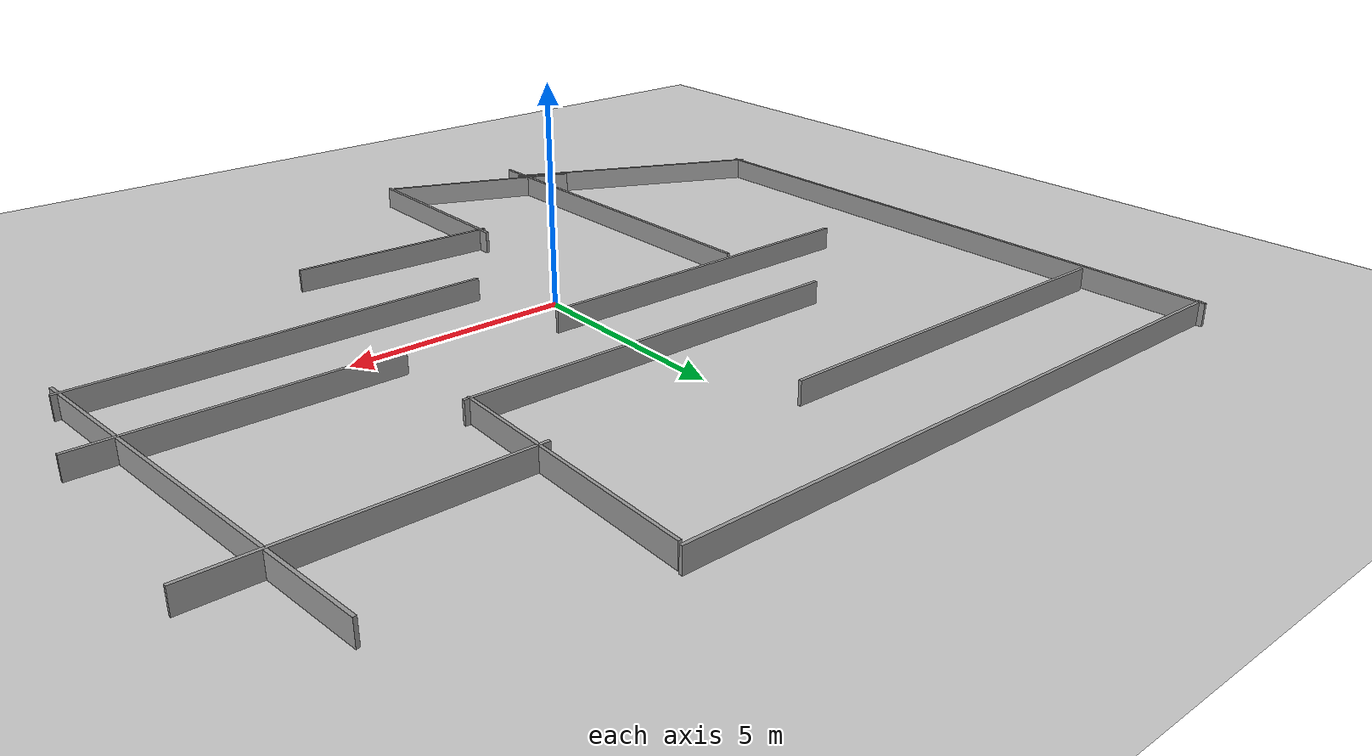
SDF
<sdf version="1.6">
 <world name="default">
  <light name="sun" type="directional">
   <pose>0 0 10 0 -0 0</pose>
   <diffuse>0.8 0.8 0.8 1</diffuse>
   <specular>0.2 0.2 0.2 1</specular>
   <attenuation>
    <range>1000</range>
    <constant>0.9</constant>
    <linear>0.01</linear>
    <quadratic>0.001</quadratic>
   </attenuation>
   <direction>-0.5 0.1 -0.9</direction>
  </light>
  <model name="ground_plane">
   <static>1</static>
   <link name="link">
    <collision name="collision">
     <geometry><plane><normal>0 0 1</normal><size>100 100</size></plane></geometry>
     <surface><friction><ode><mu>100</mu><mu2>50</mu2></ode></friction></surface>
    </collision>
    <visual name="visual">
     <cast_shadows>0</cast_shadows>
     <geometry><plane><normal>0 0 1</normal><size>100 100</size></plane></geometry>
     <material>
      <script><uri>file://media/materials/scripts/gazebo.material</uri><name>Gazebo/Grey</name></script>
     </material>
    </visual>
   </link>
  </model>
  <gravity>0 0 -9.8</gravity>
  <magnetic_field>6e-06 2.3e-05 -4.2e-05</magnetic_field>
  <atmosphere type="adiabatic"/>
  <physics name="default_physics" default="0" type="ode">
   <max_step_size>0.001</max_step_size>
   <real_time_factor>1</real_time_factor>
   <real_time_update_rate>1000</real_time_update_rate>
  </physics>
  <scene><ambient>0.4 0.4 0.4 1</ambient><background>0.7 0.7 0.7 1</background><shadows>1</shadows></scene>
  <audio><device>default</device></audio>
  <spherical_coordinates>
   <surface_model>EARTH_WGS84</surface_model>
   <latitude_deg>0</latitude_deg>
   <longitude_deg>0</longitude_deg>
   <elevation>0</elevation>
   <heading_deg>0</heading_deg>
  </spherical_coordinates>
  <model name="Untitled">
   <model name="please">
    <link name="link_1">
     <inertial>
      <mass>1.06392</mass>
      <inertia>
       <ixx>0.0891309</ixx>
       <ixy>0</ixy>
       <ixz>0</ixz>
       <iyy>18.9691</iyy>
       <iyz>0</iyz>
       <izz>18.8809</izz>
      </inertia>
     </inertial>
     <pose>-2.76768 8.91601 0 0 -0 0</pose>
     <visual name="visual">
      <geometry><box><size>14.5929 0.072898 1</size></box></geometry>
      <material>
       <lighting>1</lighting>
       <script><uri>file://media/materials/scripts/gazebo.material</uri><name>Gazebo/Grey</name></script>
      </material>
     </visual>
     <collision name="collision">
      <geometry><box><size>14.5929 0.072898 1</size></box></geometry>
      <surface>
       <friction>
        <ode><mu>1</mu><mu2>1</mu2><fdir1>0 0 0</fdir1><slip1>0</slip1><slip2>0</slip2></ode>
        <torsional>
         <coefficient>1</coefficient>
         <patch_radius>0</patch_radius>
         <surface_radius>0</surface_radius>
         <use_patch_radius>1</use_patch_radius>
         <ode><slip>0</slip></ode>
        </torsional>
       </friction>
       <bounce><restitution_coefficient>0</restitution_coefficient><threshold>1e+06</threshold></bounce>
       <contact>
        <collide_without_contact>0</collide_without_contact>
        <collide_without_contact_bitmask>1</collide_without_contact_bitmask>
        <collide_bitmask>1</collide_bitmask>
        <ode>
         <soft_cfm>0</soft_cfm>
         <soft_erp>0.2</soft_erp>
         <kp>1e+13</kp>
         <kd>1</kd>
         <max_vel>0.01</max_vel>
         <min_depth>0</min_depth>
        </ode>
        <bullet>
         <split_impulse>1</split_impulse>
         <split_impulse_penetration_threshold>-0.01</split_impulse_penetration_threshold>
         <soft_cfm>0</soft_cfm>
         <soft_erp>0.2</soft_erp>
         <kp>1e+13</kp>
         <kd>1</kd>
        </bullet>
       </contact>
      </surface>
     </collision>
    </link>
    <link name="link_1_clone">
     <inertial>
      <mass>0.441837</mass>
      <inertia>
       <ixx>0.0370154</ixx>
       <ixy>0</ixy>
       <ixz>0</ixz>
       <iyy>1.38911</iyy>
       <iyz>0</iyz>
       <izz>1.35249</izz>
      </inertia>
     </inertial>
     <pose>4.41001 5.78705 0 0 -0 1.55486</pose>
     <visual name="visual">
      <geometry><box><size>6.06031 0.072898 1</size></box></geometry>
      <material>
       <lighting>1</lighting>
       <script><uri>file://media/materials/scripts/gazebo.material</uri><name>Gazebo/Grey</name></script>
       <shader type="pixel"/>
      </material>
     </visual>
     <collision name="collision">
      <geometry><box><size>6.06031 0.072898 1</size></box></geometry>
      <surface>
       <friction>
        <ode><mu>1</mu><mu2>1</mu2><fdir1>0 0 0</fdir1><slip1>0</slip1><slip2>0</slip2></ode>
        <torsional>
         <coefficient>1</coefficient>
         <patch_radius>0</patch_radius>
         <surface_radius>0</surface_radius>
         <use_patch_radius>1</use_patch_radius>
         <ode><slip>0</slip></ode>
        </torsional>
       </friction>
       <bounce><restitution_coefficient>0</restitution_coefficient><threshold>1e+06</threshold></bounce>
       <contact>
        <collide_without_contact>0</collide_without_contact>
        <collide_without_contact_bitmask>1</collide_without_contact_bitmask>
        <collide_bitmask>1</collide_bitmask>
        <ode>
         <soft_cfm>0</soft_cfm>
         <soft_erp>0.2</soft_erp>
         <kp>1e+13</kp>
         <kd>1</kd>
         <max_vel>0.01</max_vel>
         <min_depth>0</min_depth>
        </ode>
        <bullet>
         <split_impulse>1</split_impulse>
         <split_impulse_penetration_threshold>-0.01</split_impulse_penetration_threshold>
         <soft_cfm>0</soft_cfm>
         <soft_erp>0.2</soft_erp>
         <kp>1e+13</kp>
         <kd>1</kd>
        </bullet>
       </contact>
      </surface>
     </collision>
    </link>
    <link name="link_1_clone_0">
     <inertial>
      <mass>1.06392</mass>
      <inertia>
       <ixx>0.0891309</ixx>
       <ixy>0</ixy>
       <ixz>0</ixz>
       <iyy>18.9691</iyy>
       <iyz>0</iyz>
       <izz>18.8809</izz>
      </inertia>
     </inertial>
     <pose>-9.9198 1.77744 0 0 -0 1.5834</pose>
     <visual name="visual">
      <geometry><box><size>14.5929 0.072898 1</size></box></geometry>
      <material>
       <lighting>1</lighting>
       <script><uri>file://media/materials/scripts/gazebo.material</uri><name>Gazebo/Grey</name></script>
       <shader type="pixel"/>
      </material>
     </visual>
     <collision name="collision">
      <geometry><box><size>14.5929 0.072898 1</size></box></geometry>
      <surface>
       <friction>
        <ode><mu>1</mu><mu2>1</mu2><fdir1>0 0 0</fdir1><slip1>0</slip1><slip2>0</slip2></ode>
        <torsional>
         <coefficient>1</coefficient>
         <patch_radius>0</patch_radius>
         <surface_radius>0</surface_radius>
         <use_patch_radius>1</use_patch_radius>
         <ode><slip>0</slip></ode>
        </torsional>
       </friction>
       <bounce><restitution_coefficient>0</restitution_coefficient><threshold>1e+06</threshold></bounce>
       <contact>
        <collide_without_contact>0</collide_without_contact>
        <collide_without_contact_bitmask>1</collide_without_contact_bitmask>
        <collide_bitmask>1</collide_bitmask>
        <ode>
         <soft_cfm>0</soft_cfm>
         <soft_erp>0.2</soft_erp>
         <kp>1e+13</kp>
         <kd>1</kd>
         <max_vel>0.01</max_vel>
         <min_depth>0</min_depth>
        </ode>
        <bullet>
         <split_impulse>1</split_impulse>
         <split_impulse_penetration_threshold>-0.01</split_impulse_penetration_threshold>
         <soft_cfm>0</soft_cfm>
         <soft_erp>0.2</soft_erp>
         <kp>1e+13</kp>
         <kd>1</kd>
        </bullet>
       </contact>
      </surface>
     </collision>
    </link>
    <link name="link_1_clone_1">
     <inertial>
      <mass>0.663062</mass>
      <inertia>
       <ixx>0.0555488</ixx>
       <ixy>0</ixy>
       <ixz>0</ixz>
       <iyy>4.62557</iyy>
       <iyz>0</iyz>
       <izz>4.57061</izz>
      </inertia>
     </inertial>
     <pose>-5.27642 6.15551 0 0 -0 0</pose>
     <visual name="visual">
      <geometry><box><size>9.09467 0.072898 1</size></box></geometry>
      <material>
       <lighting>1</lighting>
       <script><uri>file://media/materials/scripts/gazebo.material</uri><name>Gazebo/Grey</name></script>
       <shader type="pixel"/>
      </material>
     </visual>
     <collision name="collision">
      <geometry><box><size>9.09467 0.072898 1</size></box></geometry>
      <surface>
       <friction>
        <ode><mu>1</mu><mu2>1</mu2><fdir1>0 0 0</fdir1><slip1>0</slip1><slip2>0</slip2></ode>
        <torsional>
         <coefficient>1</coefficient>
         <patch_radius>0</patch_radius>
         <surface_radius>0</surface_radius>
         <use_patch_radius>1</use_patch_radius>
         <ode><slip>0</slip></ode>
        </torsional>
       </friction>
       <bounce><restitution_coefficient>0</restitution_coefficient><threshold>1e+06</threshold></bounce>
       <contact>
        <collide_without_contact>0</collide_without_contact>
        <collide_without_contact_bitmask>1</collide_without_contact_bitmask>
        <collide_bitmask>1</collide_bitmask>
        <ode>
         <soft_cfm>0</soft_cfm>
         <soft_erp>0.2</soft_erp>
         <kp>1e+13</kp>
         <kd>1</kd>
         <max_vel>0.01</max_vel>
         <min_depth>0</min_depth>
        </ode>
        <bullet>
         <split_impulse>1</split_impulse>
         <split_impulse_penetration_threshold>-0.01</split_impulse_penetration_threshold>
         <soft_cfm>0</soft_cfm>
         <soft_erp>0.2</soft_erp>
         <kp>1e+13</kp>
         <kd>1</kd>
        </bullet>
       </contact>
      </surface>
     </collision>
    </link>
    <link name="link_1_clone_1_clone">
     <inertial>
      <mass>0.663062</mass>
      <inertia>
       <ixx>0.0555488</ixx>
       <ixy>0</ixy>
       <ixz>0</ixz>
       <iyy>4.62557</iyy>
       <iyz>0</iyz>
       <izz>4.57061</izz>
      </inertia>
     </inertial>
     <pose>-0.036451 2.821 0 0 -0 0</pose>
     <visual name="visual">
      <geometry><box><size>9.09467 0.072898 1</size></box></geometry>
      <material>
       <lighting>1</lighting>
       <script><uri>file://media/materials/scripts/gazebo.material</uri><name>Gazebo/Grey</name></script>
       <shader type="pixel"/>
      </material>
     </visual>
     <collision name="collision">
      <geometry><box><size>9.09467 0.072898 1</size></box></geometry>
      <surface>
       <friction>
        <ode><mu>1</mu><mu2>1</mu2><fdir1>0 0 0</fdir1><slip1>0</slip1><slip2>0</slip2></ode>
        <torsional>
         <coefficient>1</coefficient>
         <patch_radius>0</patch_radius>
         <surface_radius>0</surface_radius>
         <use_patch_radius>1</use_patch_radius>
         <ode><slip>0</slip></ode>
        </torsional>
       </friction>
       <bounce><restitution_coefficient>0</restitution_coefficient><threshold>1e+06</threshold></bounce>
       <contact>
        <collide_without_contact>0</collide_without_contact>
        <collide_without_contact_bitmask>1</collide_without_contact_bitmask>
        <collide_bitmask>1</collide_bitmask>
        <ode>
         <soft_cfm>0</soft_cfm>
         <soft_erp>0.2</soft_erp>
         <kp>1e+13</kp>
         <kd>1</kd>
         <max_vel>0.01</max_vel>
         <min_depth>0</min_depth>
        </ode>
        <bullet>
         <split_impulse>1</split_impulse>
         <split_impulse_penetration_threshold>-0.01</split_impulse_penetration_threshold>
         <soft_cfm>0</soft_cfm>
         <soft_erp>0.2</soft_erp>
         <kp>1e+13</kp>
         <kd>1</kd>
        </bullet>
       </contact>
      </surface>
     </collision>
    </link>
    <link name="link_1_clone_1_clone_0">
     <inertial>
      <mass>0.663062</mass>
      <inertia>
       <ixx>0.0555488</ixx>
       <ixy>0</ixy>
       <ixz>0</ixz>
       <iyy>4.62557</iyy>
       <iyz>0</iyz>
       <izz>4.57061</izz>
      </inertia>
     </inertial>
     <pose>-4.19973 -4.28392 0 0 -0 1.58806</pose>
     <visual name="visual">
      <geometry><box><size>9.09467 0.072898 1</size></box></geometry>
      <material>
       <lighting>1</lighting>
       <script><uri>file://media/materials/scripts/gazebo.material</uri><name>Gazebo/Grey</name></script>
       <shader type="pixel"/>
      </material>
     </visual>
     <collision name="collision">
      <geometry><box><size>9.09467 0.072898 1</size></box></geometry>
      <surface>
       <friction>
        <ode><mu>1</mu><mu2>1</mu2><fdir1>0 0 0</fdir1><slip1>0</slip1><slip2>0</slip2></ode>
        <torsional>
         <coefficient>1</coefficient>
         <patch_radius>0</patch_radius>
         <surface_radius>0</surface_radius>
         <use_patch_radius>1</use_patch_radius>
         <ode><slip>0</slip></ode>
        </torsional>
       </friction>
       <bounce><restitution_coefficient>0</restitution_coefficient><threshold>1e+06</threshold></bounce>
       <contact>
        <collide_without_contact>0</collide_without_contact>
        <collide_without_contact_bitmask>1</collide_without_contact_bitmask>
        <collide_bitmask>1</collide_bitmask>
        <ode>
         <soft_cfm>0</soft_cfm>
         <soft_erp>0.2</soft_erp>
         <kp>1e+13</kp>
         <kd>1</kd>
         <max_vel>0.01</max_vel>
         <min_depth>0</min_depth>
        </ode>
        <bullet>
         <split_impulse>1</split_impulse>
         <split_impulse_penetration_threshold>-0.01</split_impulse_penetration_threshold>
         <soft_cfm>0</soft_cfm>
         <soft_erp>0.2</soft_erp>
         <kp>1e+13</kp>
         <kd>1</kd>
        </bullet>
       </contact>
      </surface>
     </collision>
    </link>
    <link name="link_1_clone_1_clone_0_clone">
     <inertial>
      <mass>0.348733</mass>
      <inertia>
       <ixx>0.0292155</ixx>
       <ixy>0</ixy>
       <ixz>0</ixz>
       <iyy>0.69397</iyy>
       <iyz>0</iyz>
       <izz>0.665063</izz>
      </inertia>
     </inertial>
     <pose>-0.681439 -7.03277 0 0 -0 1.58806</pose>
     <visual name="visual">
      <geometry><box><size>4.78327 0.072898 1</size></box></geometry>
      <material>
       <lighting>1</lighting>
       <script><uri>file://media/materials/scripts/gazebo.material</uri><name>Gazebo/Grey</name></script>
       <shader type="pixel"/>
      </material>
     </visual>
     <collision name="collision">
      <geometry><box><size>4.78327 0.072898 1</size></box></geometry>
      <surface>
       <friction>
        <ode><mu>1</mu><mu2>1</mu2><fdir1>0 0 0</fdir1><slip1>0</slip1><slip2>0</slip2></ode>
        <torsional>
         <coefficient>1</coefficient>
         <patch_radius>0</patch_radius>
         <surface_radius>0</surface_radius>
         <use_patch_radius>1</use_patch_radius>
         <ode><slip>0</slip></ode>
        </torsional>
       </friction>
       <bounce><restitution_coefficient>0</restitution_coefficient><threshold>1e+06</threshold></bounce>
       <contact>
        <collide_without_contact>0</collide_without_contact>
        <collide_without_contact_bitmask>1</collide_without_contact_bitmask>
        <collide_bitmask>1</collide_bitmask>
        <ode>
         <soft_cfm>0</soft_cfm>
         <soft_erp>0.2</soft_erp>
         <kp>1e+13</kp>
         <kd>1</kd>
         <max_vel>0.01</max_vel>
         <min_depth>0</min_depth>
        </ode>
        <bullet>
         <split_impulse>1</split_impulse>
         <split_impulse_penetration_threshold>-0.01</split_impulse_penetration_threshold>
         <soft_cfm>0</soft_cfm>
         <soft_erp>0.2</soft_erp>
         <kp>1e+13</kp>
         <kd>1</kd>
        </bullet>
       </contact>
      </surface>
     </collision>
    </link>
    <link name="link_1_clone_1_clone_0_clone_clone">
     <inertial>
      <mass>0.348733</mass>
      <inertia>
       <ixx>0.0292155</ixx>
       <ixy>0</ixy>
       <ixz>0</ixz>
       <iyy>0.69397</iyy>
       <iyz>0</iyz>
       <izz>0.665063</izz>
      </inertia>
     </inertial>
     <pose>-2.93379 -8.39048 0 0 -0 2.74961</pose>
     <visual name="visual">
      <geometry><box><size>4.78327 0.072898 1</size></box></geometry>
      <material>
       <lighting>1</lighting>
       <script><uri>file://media/materials/scripts/gazebo.material</uri><name>Gazebo/Grey</name></script>
       <shader type="pixel"/>
      </material>
     </visual>
     <collision name="collision">
      <geometry><box><size>4.78327 0.072898 1</size></box></geometry>
      <surface>
       <friction>
        <ode><mu>1</mu><mu2>1</mu2><fdir1>0 0 0</fdir1><slip1>0</slip1><slip2>0</slip2></ode>
        <torsional>
         <coefficient>1</coefficient>
         <patch_radius>0</patch_radius>
         <surface_radius>0</surface_radius>
         <use_patch_radius>1</use_patch_radius>
         <ode><slip>0</slip></ode>
        </torsional>
       </friction>
       <bounce><restitution_coefficient>0</restitution_coefficient><threshold>1e+06</threshold></bounce>
       <contact>
        <collide_without_contact>0</collide_without_contact>
        <collide_without_contact_bitmask>1</collide_without_contact_bitmask>
        <collide_bitmask>1</collide_bitmask>
        <ode>
         <soft_cfm>0</soft_cfm>
         <soft_erp>0.2</soft_erp>
         <kp>1e+13</kp>
         <kd>1</kd>
         <max_vel>0.01</max_vel>
         <min_depth>0</min_depth>
        </ode>
        <bullet>
         <split_impulse>1</split_impulse>
         <split_impulse_penetration_threshold>-0.01</split_impulse_penetration_threshold>
         <soft_cfm>0</soft_cfm>
         <soft_erp>0.2</soft_erp>
         <kp>1e+13</kp>
         <kd>1</kd>
        </bullet>
       </contact>
      </surface>
     </collision>
    </link>
    <link name="link_1_clone_1_clone_0_clone_clone_0">
     <inertial>
      <mass>0.348733</mass>
      <inertia>
       <ixx>0.0292155</ixx>
       <ixy>0</ixy>
       <ixz>0</ixz>
       <iyy>0.69397</iyy>
       <iyz>0</iyz>
       <izz>0.665063</izz>
      </inertia>
     </inertial>
     <pose>1.56023 -5.0633 0 0 -0 3.09547</pose>
     <visual name="visual">
      <geometry><box><size>4.78327 0.072898 1</size></box></geometry>
      <material>
       <lighting>1</lighting>
       <script><uri>file://media/materials/scripts/gazebo.material</uri><name>Gazebo/Grey</name></script>
       <shader type="pixel"/>
      </material>
     </visual>
     <collision name="collision">
      <geometry><box><size>4.78327 0.072898 1</size></box></geometry>
      <surface>
       <friction>
        <ode><mu>1</mu><mu2>1</mu2><fdir1>0 0 0</fdir1><slip1>0</slip1><slip2>0</slip2></ode>
        <torsional>
         <coefficient>1</coefficient>
         <patch_radius>0</patch_radius>
         <surface_radius>0</surface_radius>
         <use_patch_radius>1</use_patch_radius>
         <ode><slip>0</slip></ode>
        </torsional>
       </friction>
       <bounce><restitution_coefficient>0</restitution_coefficient><threshold>1e+06</threshold></bounce>
       <contact>
        <collide_without_contact>0</collide_without_contact>
        <collide_without_contact_bitmask>1</collide_without_contact_bitmask>
        <collide_bitmask>1</collide_bitmask>
        <ode>
         <soft_cfm>0</soft_cfm>
         <soft_erp>0.2</soft_erp>
         <kp>1e+13</kp>
         <kd>1</kd>
         <max_vel>0.01</max_vel>
         <min_depth>0</min_depth>
        </ode>
        <bullet>
         <split_impulse>1</split_impulse>
         <split_impulse_penetration_threshold>-0.01</split_impulse_penetration_threshold>
         <soft_cfm>0</soft_cfm>
         <soft_erp>0.2</soft_erp>
         <kp>1e+13</kp>
         <kd>1</kd>
        </bullet>
       </contact>
      </surface>
     </collision>
    </link>
    <link name="link_1_clone_1_clone_1">
     <inertial>
      <mass>0.595504</mass>
      <inertia>
       <ixx>0.0498891</ixx>
       <ixy>0</ixy>
       <ixz>0</ixz>
       <iyy>3.36047</iyy>
       <iyz>0</iyz>
       <izz>3.31111</izz>
      </inertia>
     </inertial>
     <pose>-3.28915 0.471547 0 0 -0 0</pose>
     <visual name="visual">
      <geometry><box><size>8.16804 0.072898 1</size></box></geometry>
      <material>
       <lighting>1</lighting>
       <script><uri>file://media/materials/scripts/gazebo.material</uri><name>Gazebo/Grey</name></script>
       <shader type="pixel"/>
      </material>
     </visual>
     <collision name="collision">
      <geometry><box><size>8.16804 0.072898 1</size></box></geometry>
      <surface>
       <friction>
        <ode><mu>1</mu><mu2>1</mu2><fdir1>0 0 0</fdir1><slip1>0</slip1><slip2>0</slip2></ode>
        <torsional>
         <coefficient>1</coefficient>
         <patch_radius>0</patch_radius>
         <surface_radius>0</surface_radius>
         <use_patch_radius>1</use_patch_radius>
         <ode><slip>0</slip></ode>
        </torsional>
       </friction>
       <bounce><restitution_coefficient>0</restitution_coefficient><threshold>1e+06</threshold></bounce>
       <contact>
        <collide_without_contact>0</collide_without_contact>
        <collide_without_contact_bitmask>1</collide_without_contact_bitmask>
        <collide_bitmask>1</collide_bitmask>
        <ode>
         <soft_cfm>0</soft_cfm>
         <soft_erp>0.2</soft_erp>
         <kp>1e+13</kp>
         <kd>1</kd>
         <max_vel>0.01</max_vel>
         <min_depth>0</min_depth>
        </ode>
        <bullet>
         <split_impulse>1</split_impulse>
         <split_impulse_penetration_threshold>-0.01</split_impulse_penetration_threshold>
         <soft_cfm>0</soft_cfm>
         <soft_erp>0.2</soft_erp>
         <kp>1e+13</kp>
         <kd>1</kd>
        </bullet>
       </contact>
      </surface>
     </collision>
    </link>
    <link name="link_1_clone_1_clone_2">
     <inertial>
      <mass>0.481396</mass>
      <inertia>
       <ixx>0.0403295</ixx>
       <ixy>0</ixy>
       <ixz>0</ixz>
       <iyy>1.78913</iyy>
       <iyz>0</iyz>
       <izz>1.74922</izz>
      </inertia>
     </inertial>
     <pose>-6.9623 -6.74968 0 0 0 -0.441346</pose>
     <visual name="visual">
      <geometry><box><size>6.60291 0.072898 1</size></box></geometry>
      <material>
       <lighting>1</lighting>
       <script><uri>file://media/materials/scripts/gazebo.material</uri><name>Gazebo/Grey</name></script>
       <shader type="pixel"/>
      </material>
     </visual>
     <collision name="collision">
      <geometry><box><size>6.60291 0.072898 1</size></box></geometry>
      <surface>
       <friction>
        <ode><mu>1</mu><mu2>1</mu2><fdir1>0 0 0</fdir1><slip1>0</slip1><slip2>0</slip2></ode>
        <torsional>
         <coefficient>1</coefficient>
         <patch_radius>0</patch_radius>
         <surface_radius>0</surface_radius>
         <use_patch_radius>1</use_patch_radius>
         <ode><slip>0</slip></ode>
        </torsional>
       </friction>
       <bounce><restitution_coefficient>0</restitution_coefficient><threshold>1e+06</threshold></bounce>
       <contact>
        <collide_without_contact>0</collide_without_contact>
        <collide_without_contact_bitmask>1</collide_without_contact_bitmask>
        <collide_bitmask>1</collide_bitmask>
        <ode>
         <soft_cfm>0</soft_cfm>
         <soft_erp>0.2</soft_erp>
         <kp>1e+13</kp>
         <kd>1</kd>
         <max_vel>0.01</max_vel>
         <min_depth>0</min_depth>
        </ode>
        <bullet>
         <split_impulse>1</split_impulse>
         <split_impulse_penetration_threshold>-0.01</split_impulse_penetration_threshold>
         <soft_cfm>0</soft_cfm>
         <soft_erp>0.2</soft_erp>
         <kp>1e+13</kp>
         <kd>1</kd>
        </bullet>
       </contact>
      </surface>
     </collision>
    </link>
    <link name="link_1_clone_1_clone_3">
     <inertial>
      <mass>0.663062</mass>
      <inertia>
       <ixx>0.0555488</ixx>
       <ixy>0</ixy>
       <ixz>0</ixz>
       <iyy>4.62557</iyy>
       <iyz>0</iyz>
       <izz>4.57061</izz>
      </inertia>
     </inertial>
     <pose>5.64126 -2.16208 0 0 -0 0</pose>
     <visual name="visual">
      <geometry><box><size>9.09467 0.072898 1</size></box></geometry>
      <material>
       <lighting>1</lighting>
       <script><uri>file://media/materials/scripts/gazebo.material</uri><name>Gazebo/Grey</name></script>
       <shader type="pixel"/>
      </material>
     </visual>
     <collision name="collision">
      <geometry><box><size>9.09467 0.072898 1</size></box></geometry>
      <surface>
       <friction>
        <ode><mu>1</mu><mu2>1</mu2><fdir1>0 0 0</fdir1><slip1>0</slip1><slip2>0</slip2></ode>
        <torsional>
         <coefficient>1</coefficient>
         <patch_radius>0</patch_radius>
         <surface_radius>0</surface_radius>
         <use_patch_radius>1</use_patch_radius>
         <ode><slip>0</slip></ode>
        </torsional>
       </friction>
       <bounce><restitution_coefficient>0</restitution_coefficient><threshold>1e+06</threshold></bounce>
       <contact>
        <collide_without_contact>0</collide_without_contact>
        <collide_without_contact_bitmask>1</collide_without_contact_bitmask>
        <collide_bitmask>1</collide_bitmask>
        <ode>
         <soft_cfm>0</soft_cfm>
         <soft_erp>0.2</soft_erp>
         <kp>1e+13</kp>
         <kd>1</kd>
         <max_vel>0.01</max_vel>
         <min_depth>0</min_depth>
        </ode>
        <bullet>
         <split_impulse>1</split_impulse>
         <split_impulse_penetration_threshold>-0.01</split_impulse_penetration_threshold>
         <soft_cfm>0</soft_cfm>
         <soft_erp>0.2</soft_erp>
         <kp>1e+13</kp>
         <kd>1</kd>
        </bullet>
       </contact>
      </surface>
     </collision>
    </link>
    <link name="link_1_clone_1_clone_4">
     <inertial>
      <mass>0.475704</mass>
      <inertia>
       <ixx>0.0398527</ixx>
       <ixy>0</ixy>
       <ixz>0</ixz>
       <iyy>1.72734</iyy>
       <iyz>0</iyz>
       <izz>1.68791</izz>
      </inertia>
     </inertial>
     <pose>7.48375 0.215336 0 0 -0 0</pose>
     <visual name="visual">
      <geometry><box><size>6.52484 0.072898 1</size></box></geometry>
      <material>
       <lighting>1</lighting>
       <script><uri>file://media/materials/scripts/gazebo.material</uri><name>Gazebo/Grey</name></script>
       <shader type="pixel"/>
      </material>
     </visual>
     <collision name="collision">
      <geometry><box><size>6.52484 0.072898 1</size></box></geometry>
      <surface>
       <friction>
        <ode><mu>1</mu><mu2>1</mu2><fdir1>0 0 0</fdir1><slip1>0</slip1><slip2>0</slip2></ode>
        <torsional>
         <coefficient>1</coefficient>
         <patch_radius>0</patch_radius>
         <surface_radius>0</surface_radius>
         <use_patch_radius>1</use_patch_radius>
         <ode><slip>0</slip></ode>
        </torsional>
       </friction>
       <bounce><restitution_coefficient>0</restitution_coefficient><threshold>1e+06</threshold></bounce>
       <contact>
        <collide_without_contact>0</collide_without_contact>
        <collide_without_contact_bitmask>1</collide_without_contact_bitmask>
        <collide_bitmask>1</collide_bitmask>
        <ode>
         <soft_cfm>0</soft_cfm>
         <soft_erp>0.2</soft_erp>
         <kp>1e+13</kp>
         <kd>1</kd>
         <max_vel>0.01</max_vel>
         <min_depth>0</min_depth>
        </ode>
        <bullet>
         <split_impulse>1</split_impulse>
         <split_impulse_penetration_threshold>-0.01</split_impulse_penetration_threshold>
         <soft_cfm>0</soft_cfm>
         <soft_erp>0.2</soft_erp>
         <kp>1e+13</kp>
         <kd>1</kd>
        </bullet>
       </contact>
      </surface>
     </collision>
    </link>
    <link name="link_1_clone_1_clone_4_clone">
     <inertial>
      <mass>0.475704</mass>
      <inertia>
       <ixx>0.0398527</ixx>
       <ixy>0</ixy>
       <ixz>0</ixz>
       <iyy>1.72734</iyy>
       <iyz>0</iyz>
       <izz>1.68791</izz>
      </inertia>
     </inertial>
     <pose>7.43849 5.06665 0 0 -0 0</pose>
     <visual name="visual">
      <geometry><box><size>6.52484 0.072898 1</size></box></geometry>
      <material>
       <lighting>1</lighting>
       <script><uri>file://media/materials/scripts/gazebo.material</uri><name>Gazebo/Grey</name></script>
       <shader type="pixel"/>
      </material>
     </visual>
     <collision name="collision">
      <geometry><box><size>6.52484 0.072898 1</size></box></geometry>
      <surface>
       <friction>
        <ode><mu>1</mu><mu2>1</mu2><fdir1>0 0 0</fdir1><slip1>0</slip1><slip2>0</slip2></ode>
        <torsional>
         <coefficient>1</coefficient>
         <patch_radius>0</patch_radius>
         <surface_radius>0</surface_radius>
         <use_patch_radius>1</use_patch_radius>
         <ode><slip>0</slip></ode>
        </torsional>
       </friction>
       <bounce><restitution_coefficient>0</restitution_coefficient><threshold>1e+06</threshold></bounce>
       <contact>
        <collide_without_contact>0</collide_without_contact>
        <collide_without_contact_bitmask>1</collide_without_contact_bitmask>
        <collide_bitmask>1</collide_bitmask>
        <ode>
         <soft_cfm>0</soft_cfm>
         <soft_erp>0.2</soft_erp>
         <kp>1e+13</kp>
         <kd>1</kd>
         <max_vel>0.01</max_vel>
         <min_depth>0</min_depth>
        </ode>
        <bullet>
         <split_impulse>1</split_impulse>
         <split_impulse_penetration_threshold>-0.01</split_impulse_penetration_threshold>
         <soft_cfm>0</soft_cfm>
         <soft_erp>0.2</soft_erp>
         <kp>1e+13</kp>
         <kd>1</kd>
        </bullet>
       </contact>
      </surface>
     </collision>
    </link>
    <link name="link_1_clone_1_clone_4_clone_0">
     <inertial>
      <mass>0.725862</mass>
      <inertia>
       <ixx>0.0608099</ixx>
       <ixy>0</ixy>
       <ixz>0</ixz>
       <iyy>6.05629</iyy>
       <iyz>0</iyz>
       <izz>5.99612</izz>
      </inertia>
     </inertial>
     <pose>9.533 2.47169 0 0 -0 1.67898</pose>
     <visual name="visual">
      <geometry><box><size>9.95605 0.072898 1</size></box></geometry>
      <material>
       <lighting>1</lighting>
       <script><uri>file://media/materials/scripts/gazebo.material</uri><name>Gazebo/Grey</name></script>
       <shader type="pixel"/>
      </material>
     </visual>
     <collision name="collision">
      <geometry><box><size>9.95605 0.072898 1</size></box></geometry>
      <surface>
       <friction>
        <ode><mu>1</mu><mu2>1</mu2><fdir1>0 0 0</fdir1><slip1>0</slip1><slip2>0</slip2></ode>
        <torsional>
         <coefficient>1</coefficient>
         <patch_radius>0</patch_radius>
         <surface_radius>0</surface_radius>
         <use_patch_radius>1</use_patch_radius>
         <ode><slip>0</slip></ode>
        </torsional>
       </friction>
       <bounce><restitution_coefficient>0</restitution_coefficient><threshold>1e+06</threshold></bounce>
       <contact>
        <collide_without_contact>0</collide_without_contact>
        <collide_without_contact_bitmask>1</collide_without_contact_bitmask>
        <collide_bitmask>1</collide_bitmask>
        <ode>
         <soft_cfm>0</soft_cfm>
         <soft_erp>0.2</soft_erp>
         <kp>1e+13</kp>
         <kd>1</kd>
         <max_vel>0.01</max_vel>
         <min_depth>0</min_depth>
        </ode>
        <bullet>
         <split_impulse>1</split_impulse>
         <split_impulse_penetration_threshold>-0.01</split_impulse_penetration_threshold>
         <soft_cfm>0</soft_cfm>
         <soft_erp>0.2</soft_erp>
         <kp>1e+13</kp>
         <kd>1</kd>
        </bullet>
       </contact>
      </surface>
     </collision>
    </link>
    <static>0</static>
   </model>
   <static>0</static>
   <pose>0.021799 0.744072 0 0 -0 0</pose>
  </model>
 </world>
</sdf>
